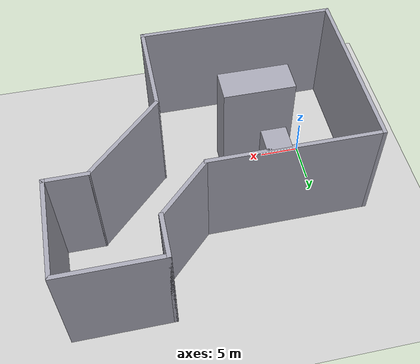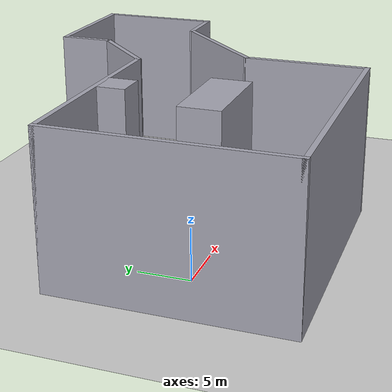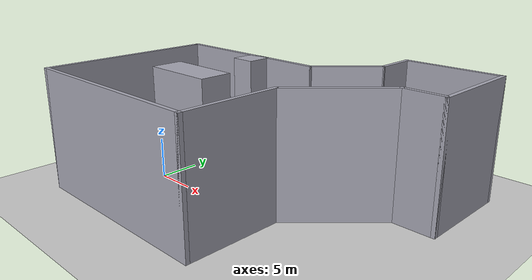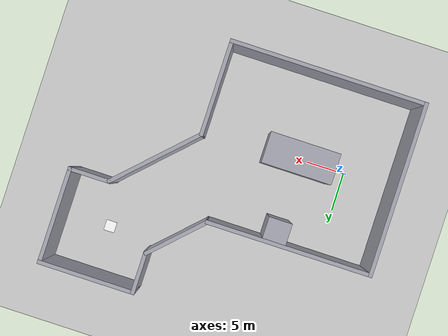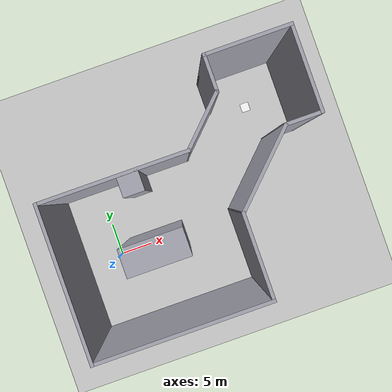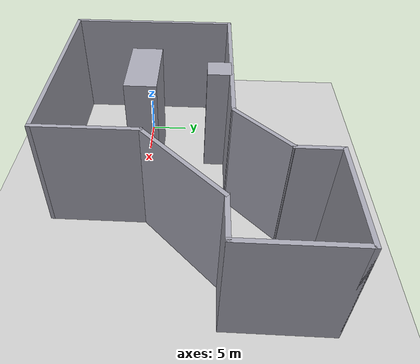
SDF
<?xml version="1.0" encoding="UTF-8"?>
<sdf version="1.9">
  <world name="nav2_arena">
    <physics type="ode">
      <max_step_size>0.004</max_step_size>
      <real_time_factor>1.0</real_time_factor>
      <real_time_update_rate>250</real_time_update_rate>
    </physics>
    <gravity>0 0 -9.8</gravity>
    <magnetic_field>6e-06 2.3e-05 -4.2e-05</magnetic_field>
    <atmosphere type="adiabatic"/>
    <scene>
      <grid>false</grid>
      <ambient>0.4 0.4 0.4 1</ambient>
      <background>0.7 0.7 0.7 1</background>
      <shadows>true</shadows>
    </scene>

    <spherical_coordinates>
      <surface_model>EARTH_WGS84</surface_model>
      <world_frame_orientation>ENU</world_frame_orientation>
      <latitude_deg>47.397971057728974</latitude_deg>
      <longitude_deg>8.546163739800146</longitude_deg>
      <elevation>0</elevation>
    </spherical_coordinates>

    <light name="sunUTC" type="directional">
      <pose>0 0 500 0 -0 0</pose>
      <cast_shadows>true</cast_shadows>
      <intensity>1</intensity>
      <direction>0.001 0.625 -0.78</direction>
      <diffuse>0.904 0.904 0.904 1</diffuse>
      <specular>0.271 0.271 0.271 1</specular>
      <attenuation>
        <range>2000</range><linear>0</linear><constant>1</constant><quadratic>0</quadratic>
      </attenuation>
      <spot><inner_angle>0</inner_angle><outer_angle>0</outer_angle><falloff>0</falloff></spot>
    </light>

    <model name="ground_plane">
      <static>true</static>
      <link name="link">
        <collision name="collision">
          <geometry><plane><normal>0 0 1</normal><size>1 1</size></plane></geometry>
          <surface><friction><ode/></friction><bounce/><contact/></surface>
        </collision>
        <visual name="visual">
          <geometry><plane><normal>0 0 1</normal><size>200 200</size></plane></geometry>
          <material>
            <ambient>0.75 0.75 0.75 1</ambient>
            <diffuse>0.8 0.8 0.8 1</diffuse>
            <specular>0.2 0.2 0.2 1</specular>
          </material>
        </visual>
      </link>
    </model>

    <!-- 起飛區 A 的西界 -->
    <model name="wall_west">
      <static>true</static>
      <pose>-6.0 0.0 7.5 0 0 0.0000000000</pose>
      <link name="link">
        <collision name="collision">
          <geometry><box><size>0.5 22.5 15.0</size></box></geometry>
        </collision>
        <visual name="visual">
          <geometry><box><size>0.5 22.5 15.0</size></box></geometry>
          <material>
            <ambient>0.3 0.3 0.35 1</ambient>
            <diffuse>0.65 0.65 0.7 1</diffuse>
            <specular>0.2 0.2 0.2 1</specular>
          </material>
        </visual>
      </link>
    </model>

    <!-- 南界，同時是南道的外牆 -->
    <model name="wall_south">
      <static>true</static>
      <pose>6.5 -11.0 7.5 0 0 0.0000000000</pose>
      <link name="link">
        <collision name="collision">
          <geometry><box><size>25.5 0.5 15.0</size></box></geometry>
        </collision>
        <visual name="visual">
          <geometry><box><size>25.5 0.5 15.0</size></box></geometry>
          <material>
            <ambient>0.3 0.3 0.35 1</ambient>
            <diffuse>0.65 0.65 0.7 1</diffuse>
            <specular>0.2 0.2 0.2 1</specular>
          </material>
        </visual>
      </link>
    </model>

    <!-- 北界，東端止於 x=15 接上斜走廊 -->
    <model name="wall_north">
      <static>true</static>
      <pose>4.5 11.0 7.5 0 0 0.0000000000</pose>
      <link name="link">
        <collision name="collision">
          <geometry><box><size>21.5 0.5 15.0</size></box></geometry>
        </collision>
        <visual name="visual">
          <geometry><box><size>21.5 0.5 15.0</size></box></geometry>
          <material>
            <ambient>0.3 0.3 0.35 1</ambient>
            <diffuse>0.65 0.65 0.7 1</diffuse>
            <specular>0.2 0.2 0.2 1</specular>
          </material>
        </visual>
      </link>
    </model>

    <!-- 匯合區 M 的東界，北端止於 y=1 接上斜走廊 -->
    <model name="wall_east">
      <static>true</static>
      <pose>19.0 -5.0 7.5 0 0 0.0000000000</pose>
      <link name="link">
        <collision name="collision">
          <geometry><box><size>0.5 12.5 15.0</size></box></geometry>
        </collision>
        <visual name="visual">
          <geometry><box><size>0.5 12.5 15.0</size></box></geometry>
          <material>
            <ambient>0.3 0.3 0.35 1</ambient>
            <diffuse>0.65 0.65 0.7 1</diffuse>
            <specular>0.2 0.2 0.2 1</specular>
          </material>
        </visual>
      </link>
    </model>

    <!-- 把直走廊劈成南北兩道。東端只到 x=11，刻意不伸到匯合區，免得擋住轉進斜走廊的路 -->
    <model name="divider">
      <static>true</static>
      <pose>6.5 0.0 7.5 0 0 0.0000000000</pose>
      <link name="link">
        <collision name="collision">
          <geometry><box><size>9.0 4.0 15.0</size></box></geometry>
        </collision>
        <visual name="visual">
          <geometry><box><size>9.0 4.0 15.0</size></box></geometry>
          <material>
            <ambient>0.3 0.3 0.35 1</ambient>
            <diffuse>0.65 0.65 0.7 1</diffuse>
            <specular>0.2 0.2 0.2 1</specular>
          </material>
        </visual>
      </link>
    </model>

    <!-- 北道的束縮塊：把北道從 9 m 夾到 6 m，讓兩條路真的有優劣差別 -->
    <model name="pinch_north">
      <static>true</static>
      <pose>6.5 9.5 7.5 0 0 0.0000000000</pose>
      <link name="link">
        <collision name="collision">
          <geometry><box><size>3.0 3.0 15.0</size></box></geometry>
        </collision>
        <visual name="visual">
          <geometry><box><size>3.0 3.0 15.0</size></box></geometry>
          <material>
            <ambient>0.3 0.3 0.35 1</ambient>
            <diffuse>0.65 0.65 0.7 1</diffuse>
            <specular>0.2 0.2 0.2 1</specular>
          </material>
        </visual>
      </link>
    </model>

    <!-- 斜走廊西北側牆，(15,11)->(21,17) -->
    <model name="wall_diag_nw">
      <static>true</static>
      <pose>18.0 14.0 7.5 0 0 0.7853981634</pose>
      <link name="link">
        <collision name="collision">
          <geometry><box><size>8.8 0.5 15.0</size></box></geometry>
        </collision>
        <visual name="visual">
          <geometry><box><size>8.8 0.5 15.0</size></box></geometry>
          <material>
            <ambient>0.3 0.3 0.35 1</ambient>
            <diffuse>0.65 0.65 0.7 1</diffuse>
            <specular>0.2 0.2 0.2 1</specular>
          </material>
        </visual>
      </link>
    </model>

    <!-- 斜走廊東南側牆，(19,1)->(28,10) -->
    <model name="wall_diag_se">
      <static>true</static>
      <pose>23.5 5.5 7.5 0 0 0.7853981634</pose>
      <link name="link">
        <collision name="collision">
          <geometry><box><size>13.0 0.5 15.0</size></box></geometry>
        </collision>
        <visual name="visual">
          <geometry><box><size>13.0 0.5 15.0</size></box></geometry>
          <material>
            <ambient>0.3 0.3 0.35 1</ambient>
            <diffuse>0.65 0.65 0.7 1</diffuse>
            <specular>0.2 0.2 0.2 1</specular>
          </material>
        </visual>
      </link>
    </model>

    <!-- 空地 D 的西界 -->
    <model name="wall_d_west">
      <static>true</static>
      <pose>21.0 19.5 7.5 0 0 0.0000000000</pose>
      <link name="link">
        <collision name="collision">
          <geometry><box><size>0.5 5.5 15.0</size></box></geometry>
        </collision>
        <visual name="visual">
          <geometry><box><size>0.5 5.5 15.0</size></box></geometry>
          <material>
            <ambient>0.3 0.3 0.35 1</ambient>
            <diffuse>0.65 0.65 0.7 1</diffuse>
            <specular>0.2 0.2 0.2 1</specular>
          </material>
        </visual>
      </link>
    </model>

    <!-- 空地 D 的北界 -->
    <model name="wall_d_north">
      <static>true</static>
      <pose>27.0 22.0 7.5 0 0 0.0000000000</pose>
      <link name="link">
        <collision name="collision">
          <geometry><box><size>12.5 0.5 15.0</size></box></geometry>
        </collision>
        <visual name="visual">
          <geometry><box><size>12.5 0.5 15.0</size></box></geometry>
          <material>
            <ambient>0.3 0.3 0.35 1</ambient>
            <diffuse>0.65 0.65 0.7 1</diffuse>
            <specular>0.2 0.2 0.2 1</specular>
          </material>
        </visual>
      </link>
    </model>

    <!-- 空地 D 的東界 -->
    <model name="wall_d_east">
      <static>true</static>
      <pose>33.0 16.0 7.5 0 0 0.0000000000</pose>
      <link name="link">
        <collision name="collision">
          <geometry><box><size>0.5 12.5 15.0</size></box></geometry>
        </collision>
        <visual name="visual">
          <geometry><box><size>0.5 12.5 15.0</size></box></geometry>
          <material>
            <ambient>0.3 0.3 0.35 1</ambient>
            <diffuse>0.65 0.65 0.7 1</diffuse>
            <specular>0.2 0.2 0.2 1</specular>
          </material>
        </visual>
      </link>
    </model>

    <!-- 空地 D 的南界，西端止於 x=28 接上斜走廊 -->
    <model name="wall_d_south">
      <static>true</static>
      <pose>30.5 10.0 7.5 0 0 0.0000000000</pose>
      <link name="link">
        <collision name="collision">
          <geometry><box><size>5.5 0.5 15.0</size></box></geometry>
        </collision>
        <visual name="visual">
          <geometry><box><size>5.5 0.5 15.0</size></box></geometry>
          <material>
            <ambient>0.3 0.3 0.35 1</ambient>
            <diffuse>0.65 0.65 0.7 1</diffuse>
            <specular>0.2 0.2 0.2 1</specular>
          </material>
        </visual>
      </link>
    </model>

    <!-- ===== 降落標記 =====
         z 給 0.01 而不是 0：跟地面同高會發生 z-fighting（兩個共面的多邊形互相
         閃爍），相機會拍到雜訊。抬高 1 cm 對偵測沒有影響。 -->
    <include>
      <uri>model://apriltag_36h11</uri>
      <name>landing_tag</name>
      <pose>27.0 16.0 0.01 0 0 0</pose>
    </include>

  </world>
</sdf>

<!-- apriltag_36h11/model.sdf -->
<sdf version='1.9'>
  <model name='apriltag_36h11'>
    <static>true</static>
    <pose>0 0 0.001 0 0 0</pose>
    <link name='base'>
      <visual name='base_visual'>
        <geometry>
          <plane>
            <normal>0 0 1</normal>
            <size>1.4 1.4</size>
          </plane>
        </geometry>
        <material>
          <diffuse>1 1 1 1</diffuse>
          <specular>0.1 0.1 0.1 1</specular>
          <pbr>
            <metal>
              <albedo_map>model://apriltag_36h11/apriltag_36h11.png</albedo_map>
            </metal>
          </pbr>
        </material>
      </visual>
    </link>
  </model>
</sdf>
